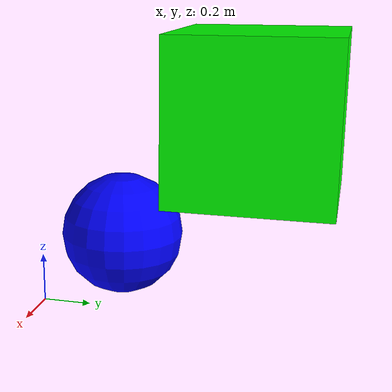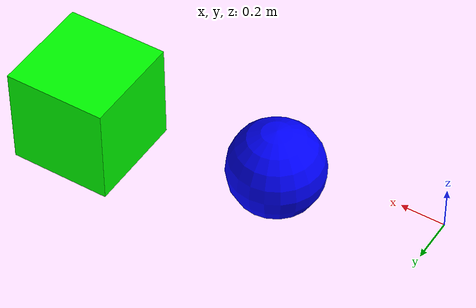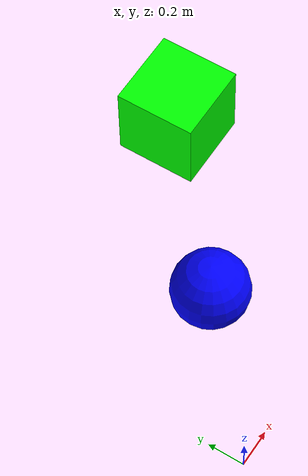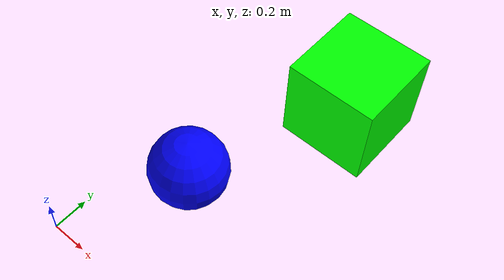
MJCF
<mujoco>
     <worldbody>
          <light name = "light1" pos = "0 0 1" dir = "0 0 -1" active = "true"/>
          <geom name = "geom1" type = "box" pos = "1 1 1" size = "0.2 0.2 0.2" rgba="0 1 0 1" />
          <geom name = "geom2" type = "sphere" pos = "0.5 0.5 0.5" size = "0.2" rgba = "0 0 1 1" />
     </worldbody>
</mujoco>
